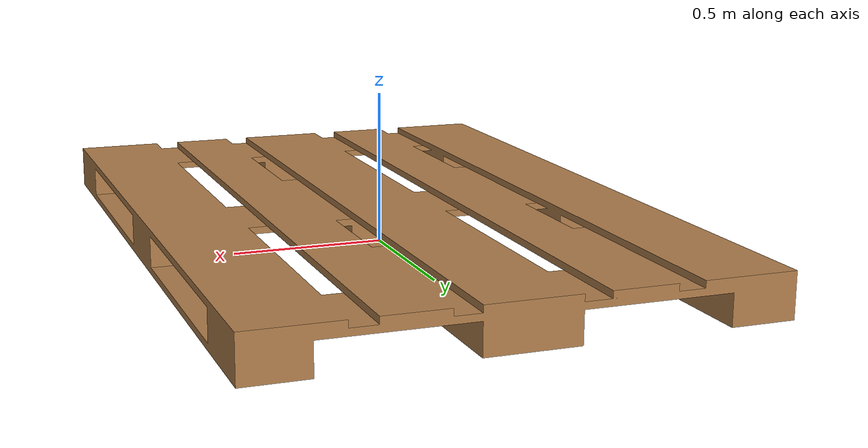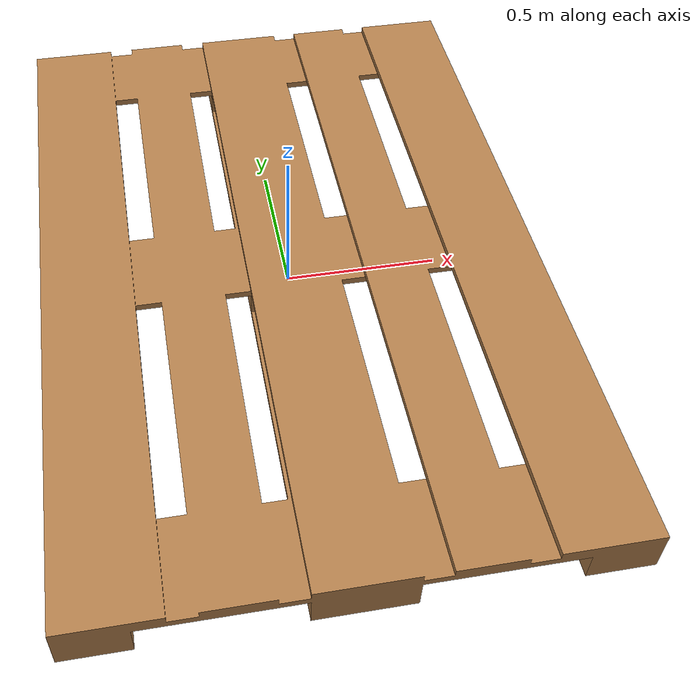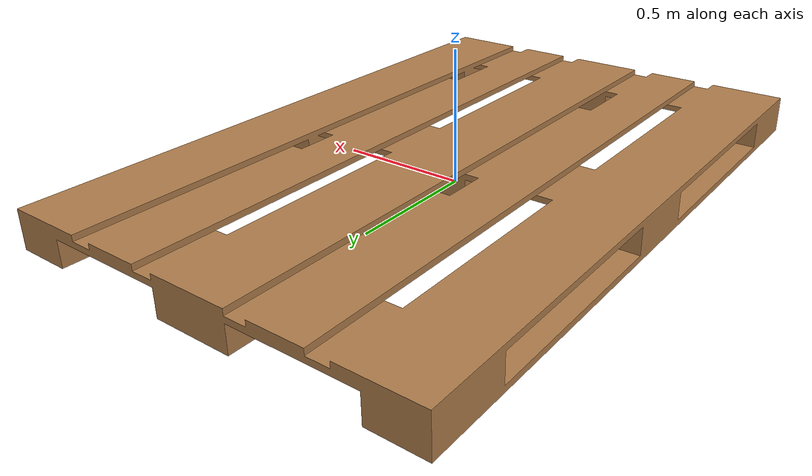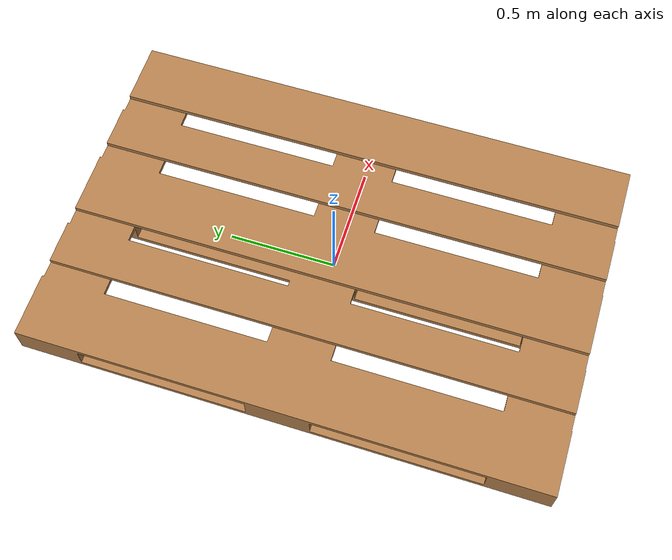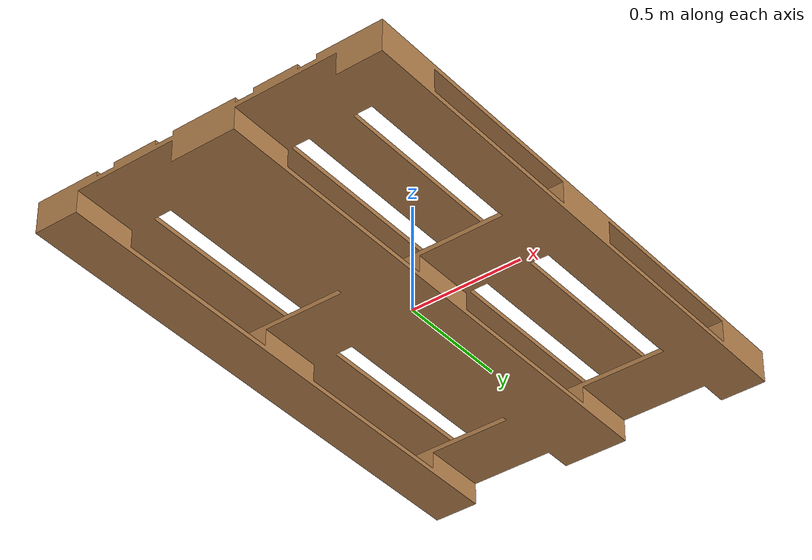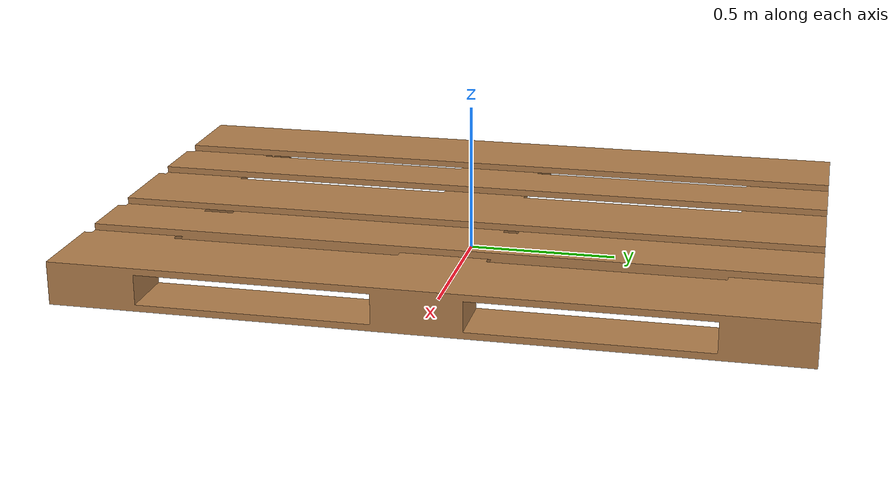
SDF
<?xml version="1.0" ?>
<sdf version="1.5">
  <model name="pallet">
    <static>true</static>
    <link name='defaultModel_0::custom_0'>
      <pose>0 0 0 0 0 0</pose>
      <gravity>1</gravity>
      <self_collide>0</self_collide>
      <kinematic>0</kinematic>
      <visual name='custom_0_visual'>
        <pose>0 0 0 1.57079 0 0</pose>
        <geometry>
          <mesh>
            <uri>model://pallet/pallet.dae</uri>
            <scale>0.02 0.01 0.02</scale>
          </mesh>
        </geometry>
        <material>
          <script>
            <uri>file://media/materials/scripts/gazebo.material</uri>
            <name>Gazebo/Wood</name>
          </script>
        </material>
      </visual>
      <collision name='defaultModel_0::custom_0_collision'>
        <geometry>
          <mesh>
            <uri>model://pallet/pallet.dae</uri>
            <scale>0.02 0.01 0.02</scale>
          </mesh>
        </geometry>
        <pose>0 0 0 1.57079 0 0</pose>
      </collision>
    </link>
  </model>
</sdf>
